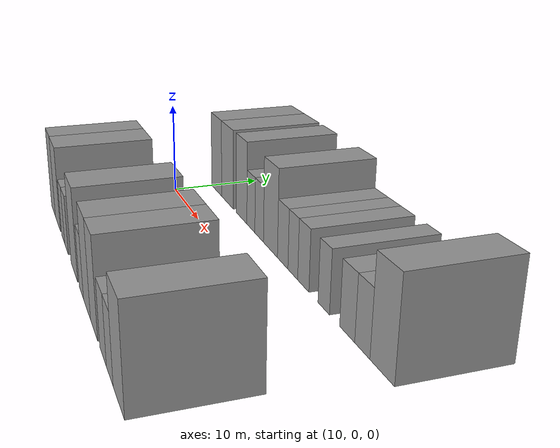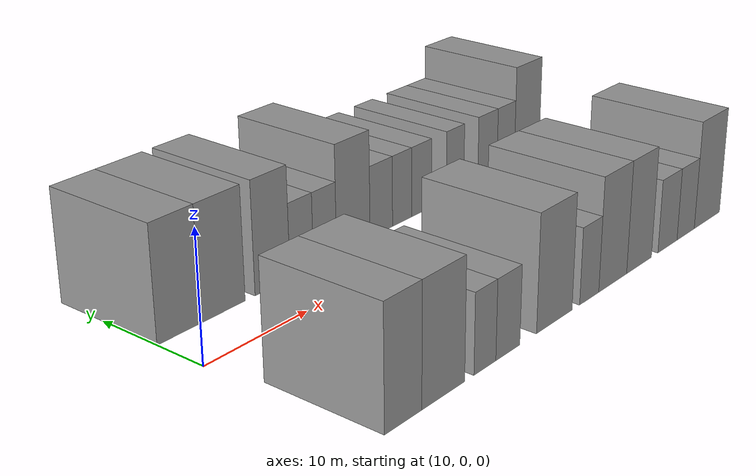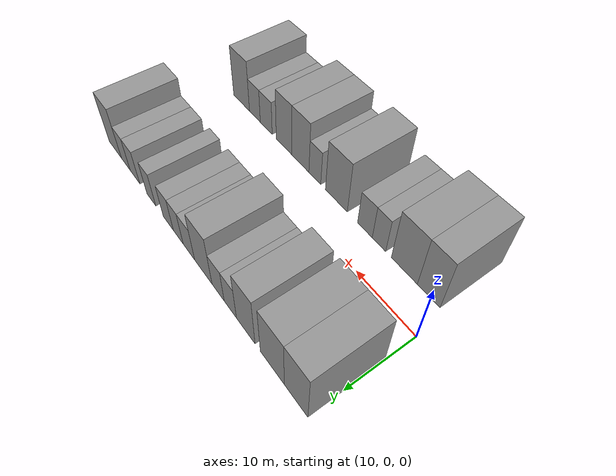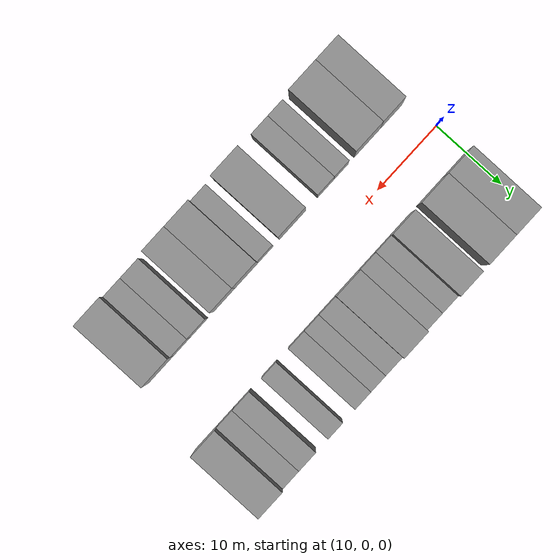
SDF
<sdf version="1.6">
 <world name="default">
  <model name="building_1">
   <static>1</static>
   <pose>12.0045 9.5000 0 0.000000 0.000000 1.570796</pose>
   <link name="link">
    <pose>0 0 4.50 0 0 0</pose>
    <collision name="collision"><geometry><box><size>10.0000 4.0090 9.0000</size></box></geometry></collision>
    <visual name="visual">
     <cast_shadows>0</cast_shadows>
     <geometry><box><size>10.0000 4.0090 9.0000</size></box></geometry>
     <material>
      <script>
       <uri>model://grey_wall/materials/scripts</uri>
       <uri>model://grey_wall/materials/textures</uri>
       <name>vrc/grey_wall</name>
      </script>
     </material>
    </visual>
   </link>
  </model>
  <model name="building_2">
   <static>1</static>
   <pose>16.1920 9.5000 0 0.000000 0.000000 1.570796</pose>
   <link name="link">
    <pose>0 0 4.50 0 0 0</pose>
    <collision name="collision"><geometry><box><size>10.0000 4.3661 9.0000</size></box></geometry></collision>
    <visual name="visual">
     <cast_shadows>0</cast_shadows>
     <geometry><box><size>10.0000 4.3661 9.0000</size></box></geometry>
     <material>
      <script>
       <uri>model://grey_wall/materials/scripts</uri>
       <uri>model://grey_wall/materials/textures</uri>
       <name>vrc/grey_wall</name>
      </script>
     </material>
    </visual>
   </link>
  </model>
  <model name="building_3">
   <static>1</static>
   <pose>21.2087 9.5000 0 0.000000 0.000000 1.570796</pose>
   <link name="link">
    <pose>0 0 4.50 0 0 0</pose>
    <collision name="collision"><geometry><box><size>10.0000 3.6673 9.0000</size></box></geometry></collision>
    <visual name="visual">
     <cast_shadows>0</cast_shadows>
     <geometry><box><size>10.0000 3.6673 9.0000</size></box></geometry>
     <material>
      <script>
       <uri>model://grey_wall/materials/scripts</uri>
       <uri>model://grey_wall/materials/textures</uri>
       <name>vrc/grey_wall</name>
      </script>
     </material>
    </visual>
   </link>
  </model>
  <model name="building_4">
   <static>1</static>
   <pose>24.3245 9.5000 0 0.000000 0.000000 1.570796</pose>
   <link name="link">
    <pose>0 0 3.00 0 0 0</pose>
    <collision name="collision"><geometry><box><size>10.0000 2.5643 6.0000</size></box></geometry></collision>
    <visual name="visual">
     <cast_shadows>0</cast_shadows>
     <geometry><box><size>10.0000 2.5643 6.0000</size></box></geometry>
     <material>
      <script>
       <uri>model://grey_wall/materials/scripts</uri>
       <uri>model://grey_wall/materials/textures</uri>
       <name>vrc/grey_wall</name>
      </script>
     </material>
    </visual>
   </link>
  </model>
  <model name="building_5">
   <static>1</static>
   <pose>26.9163 9.5000 0 0.000000 0.000000 1.570796</pose>
   <link name="link">
    <pose>0 0 3.00 0 0 0</pose>
    <collision name="collision"><geometry><box><size>10.0000 2.6194 6.0000</size></box></geometry></collision>
    <visual name="visual">
     <cast_shadows>0</cast_shadows>
     <geometry><box><size>10.0000 2.6194 6.0000</size></box></geometry>
     <material>
      <script>
       <uri>model://grey_wall/materials/scripts</uri>
       <uri>model://grey_wall/materials/textures</uri>
       <name>vrc/grey_wall</name>
      </script>
     </material>
    </visual>
   </link>
  </model>
  <model name="building_6">
   <static>1</static>
   <pose>30.2056 9.5000 0 0.000000 0.000000 1.570796</pose>
   <link name="link">
    <pose>0 0 4.50 0 0 0</pose>
    <collision name="collision"><geometry><box><size>10.0000 3.9591 9.0000</size></box></geometry></collision>
    <visual name="visual">
     <cast_shadows>0</cast_shadows>
     <geometry><box><size>10.0000 3.9591 9.0000</size></box></geometry>
     <material>
      <script>
       <uri>model://grey_wall/materials/scripts</uri>
       <uri>model://grey_wall/materials/textures</uri>
       <name>vrc/grey_wall</name>
      </script>
     </material>
    </visual>
   </link>
  </model>
  <model name="building_7">
   <static>1</static>
   <pose>33.5692 9.5000 0 0.000000 0.000000 1.570796</pose>
   <link name="link">
    <pose>0 0 3.00 0 0 0</pose>
    <collision name="collision"><geometry><box><size>10.0000 2.7680 6.0000</size></box></geometry></collision>
    <visual name="visual">
     <cast_shadows>0</cast_shadows>
     <geometry><box><size>10.0000 2.7680 6.0000</size></box></geometry>
     <material>
      <script>
       <uri>model://grey_wall/materials/scripts</uri>
       <uri>model://grey_wall/materials/textures</uri>
       <name>vrc/grey_wall</name>
      </script>
     </material>
    </visual>
   </link>
  </model>
  <model name="building_8">
   <static>1</static>
   <pose>36.1631 9.5000 0 0.000000 0.000000 1.570796</pose>
   <link name="link">
    <pose>0 0 3.00 0 0 0</pose>
    <collision name="collision"><geometry><box><size>10.0000 2.4198 6.0000</size></box></geometry></collision>
    <visual name="visual">
     <cast_shadows>0</cast_shadows>
     <geometry><box><size>10.0000 2.4198 6.0000</size></box></geometry>
     <material>
      <script>
       <uri>model://grey_wall/materials/scripts</uri>
       <uri>model://grey_wall/materials/textures</uri>
       <name>vrc/grey_wall</name>
      </script>
     </material>
    </visual>
   </link>
  </model>
  <model name="building_9">
   <static>1</static>
   <pose>38.6890 9.5000 0 0.000000 0.000000 1.570796</pose>
   <link name="link">
    <pose>0 0 3.00 0 0 0</pose>
    <collision name="collision"><geometry><box><size>10.0000 2.6320 6.0000</size></box></geometry></collision>
    <visual name="visual">
     <cast_shadows>0</cast_shadows>
     <geometry><box><size>10.0000 2.6320 6.0000</size></box></geometry>
     <material>
      <script>
       <uri>model://grey_wall/materials/scripts</uri>
       <uri>model://grey_wall/materials/textures</uri>
       <name>vrc/grey_wall</name>
      </script>
     </material>
    </visual>
   </link>
  </model>
  <model name="building_10">
   <static>1</static>
   <pose>43.2170 9.5000 0 0.000000 0.000000 1.570796</pose>
   <link name="link">
    <pose>0 0 3.00 0 0 0</pose>
    <collision name="collision"><geometry><box><size>10.0000 2.4241 6.0000</size></box></geometry></collision>
    <visual name="visual">
     <cast_shadows>0</cast_shadows>
     <geometry><box><size>10.0000 2.4241 6.0000</size></box></geometry>
     <material>
      <script>
       <uri>model://grey_wall/materials/scripts</uri>
       <uri>model://grey_wall/materials/textures</uri>
       <name>vrc/grey_wall</name>
      </script>
     </material>
    </visual>
   </link>
  </model>
  <model name="building_11">
   <static>1</static>
   <pose>47.8303 9.5000 0 0.000000 0.000000 1.570796</pose>
   <link name="link">
    <pose>0 0 3.00 0 0 0</pose>
    <collision name="collision"><geometry><box><size>10.0000 2.8025 6.0000</size></box></geometry></collision>
    <visual name="visual">
     <cast_shadows>0</cast_shadows>
     <geometry><box><size>10.0000 2.8025 6.0000</size></box></geometry>
     <material>
      <script>
       <uri>model://grey_wall/materials/scripts</uri>
       <uri>model://grey_wall/materials/textures</uri>
       <name>vrc/grey_wall</name>
      </script>
     </material>
    </visual>
   </link>
  </model>
  <model name="building_12">
   <static>1</static>
   <pose>50.5448 9.5000 0 0.000000 0.000000 1.570796</pose>
   <link name="link">
    <pose>0 0 3.00 0 0 0</pose>
    <collision name="collision"><geometry><box><size>10.0000 2.6265 6.0000</size></box></geometry></collision>
    <visual name="visual">
     <cast_shadows>0</cast_shadows>
     <geometry><box><size>10.0000 2.6265 6.0000</size></box></geometry>
     <material>
      <script>
       <uri>model://grey_wall/materials/scripts</uri>
       <uri>model://grey_wall/materials/textures</uri>
       <name>vrc/grey_wall</name>
      </script>
     </material>
    </visual>
   </link>
  </model>
  <model name="building_13">
   <static>1</static>
   <pose>53.8044 9.5000 0 0.000000 0.000000 1.570796</pose>
   <link name="link">
    <pose>0 0 4.50 0 0 0</pose>
    <collision name="collision"><geometry><box><size>10.0000 3.8926 9.0000</size></box></geometry></collision>
    <visual name="visual">
     <cast_shadows>0</cast_shadows>
     <geometry><box><size>10.0000 3.8926 9.0000</size></box></geometry>
     <material>
      <script>
       <uri>model://grey_wall/materials/scripts</uri>
       <uri>model://grey_wall/materials/textures</uri>
       <name>vrc/grey_wall</name>
      </script>
     </material>
    </visual>
   </link>
  </model>
  <model name="building_50">
   <static>1</static>
   <pose>12.8146 -9.5000 0 0.000000 0.000000 1.570796</pose>
   <link name="link">
    <pose>0 0 4.50 0 0 0</pose>
    <collision name="collision"><geometry><box><size>10.0000 3.6291 9.0000</size></box></geometry></collision>
    <visual name="visual">
     <cast_shadows>0</cast_shadows>
     <geometry><box><size>10.0000 3.6291 9.0000</size></box></geometry>
     <material>
      <script>
       <uri>model://grey_wall/materials/scripts</uri>
       <uri>model://grey_wall/materials/textures</uri>
       <name>vrc/grey_wall</name>
      </script>
     </material>
    </visual>
   </link>
  </model>
  <model name="building_51">
   <static>1</static>
   <pose>16.8435 -9.5000 0 0.000000 0.000000 1.570796</pose>
   <link name="link">
    <pose>0 0 4.50 0 0 0</pose>
    <collision name="collision"><geometry><box><size>10.0000 4.4288 9.0000</size></box></geometry></collision>
    <visual name="visual">
     <cast_shadows>0</cast_shadows>
     <geometry><box><size>10.0000 4.4288 9.0000</size></box></geometry>
     <material>
      <script>
       <uri>model://grey_wall/materials/scripts</uri>
       <uri>model://grey_wall/materials/textures</uri>
       <name>vrc/grey_wall</name>
      </script>
     </material>
    </visual>
   </link>
  </model>
  <model name="building_52">
   <static>1</static>
   <pose>21.2728 -9.5000 0 0.000000 0.000000 1.570796</pose>
   <link name="link">
    <pose>0 0 3.00 0 0 0</pose>
    <collision name="collision"><geometry><box><size>10.0000 2.4298 6.0000</size></box></geometry></collision>
    <visual name="visual">
     <cast_shadows>0</cast_shadows>
     <geometry><box><size>10.0000 2.4298 6.0000</size></box></geometry>
     <material>
      <script>
       <uri>model://grey_wall/materials/scripts</uri>
       <uri>model://grey_wall/materials/textures</uri>
       <name>vrc/grey_wall</name>
      </script>
     </material>
    </visual>
   </link>
  </model>
  <model name="building_53">
   <static>1</static>
   <pose>23.8699 -9.5000 0 0.000000 0.000000 1.570796</pose>
   <link name="link">
    <pose>0 0 3.00 0 0 0</pose>
    <collision name="collision"><geometry><box><size>10.0000 2.7645 6.0000</size></box></geometry></collision>
    <visual name="visual">
     <cast_shadows>0</cast_shadows>
     <geometry><box><size>10.0000 2.7645 6.0000</size></box></geometry>
     <material>
      <script>
       <uri>model://grey_wall/materials/scripts</uri>
       <uri>model://grey_wall/materials/textures</uri>
       <name>vrc/grey_wall</name>
      </script>
     </material>
    </visual>
   </link>
  </model>
  <model name="building_54">
   <static>1</static>
   <pose>29.4754 -9.5000 0 0.000000 0.000000 1.570796</pose>
   <link name="link">
    <pose>0 0 4.50 0 0 0</pose>
    <collision name="collision"><geometry><box><size>10.0000 4.4463 9.0000</size></box></geometry></collision>
    <visual name="visual">
     <cast_shadows>0</cast_shadows>
     <geometry><box><size>10.0000 4.4463 9.0000</size></box></geometry>
     <material>
      <script>
       <uri>model://grey_wall/materials/scripts</uri>
       <uri>model://grey_wall/materials/textures</uri>
       <name>vrc/grey_wall</name>
      </script>
     </material>
    </visual>
   </link>
  </model>
  <model name="building_55">
   <static>1</static>
   <pose>33.9761 -9.5000 0 0.000000 0.000000 1.570796</pose>
   <link name="link">
    <pose>0 0 3.00 0 0 0</pose>
    <collision name="collision"><geometry><box><size>10.0000 2.5552 6.0000</size></box></geometry></collision>
    <visual name="visual">
     <cast_shadows>0</cast_shadows>
     <geometry><box><size>10.0000 2.5552 6.0000</size></box></geometry>
     <material>
      <script>
       <uri>model://grey_wall/materials/scripts</uri>
       <uri>model://grey_wall/materials/textures</uri>
       <name>vrc/grey_wall</name>
      </script>
     </material>
    </visual>
   </link>
  </model>
  <model name="building_56">
   <static>1</static>
   <pose>37.2035 -9.5000 0 0.000000 0.000000 1.570796</pose>
   <link name="link">
    <pose>0 0 4.50 0 0 0</pose>
    <collision name="collision"><geometry><box><size>10.0000 3.8996 9.0000</size></box></geometry></collision>
    <visual name="visual">
     <cast_shadows>0</cast_shadows>
     <geometry><box><size>10.0000 3.8996 9.0000</size></box></geometry>
     <material>
      <script>
       <uri>model://grey_wall/materials/scripts</uri>
       <uri>model://grey_wall/materials/textures</uri>
       <name>vrc/grey_wall</name>
      </script>
     </material>
    </visual>
   </link>
  </model>
  <model name="building_57">
   <static>1</static>
   <pose>40.9713 -9.5000 0 0.000000 0.000000 1.570796</pose>
   <link name="link">
    <pose>0 0 4.50 0 0 0</pose>
    <collision name="collision"><geometry><box><size>10.0000 3.6360 9.0000</size></box></geometry></collision>
    <visual name="visual">
     <cast_shadows>0</cast_shadows>
     <geometry><box><size>10.0000 3.6360 9.0000</size></box></geometry>
     <material>
      <script>
       <uri>model://grey_wall/materials/scripts</uri>
       <uri>model://grey_wall/materials/textures</uri>
       <name>vrc/grey_wall</name>
      </script>
     </material>
    </visual>
   </link>
  </model>
  <model name="building_58">
   <static>1</static>
   <pose>45.2743 -9.5000 0 0.000000 0.000000 1.570796</pose>
   <link name="link">
    <pose>0 0 3.00 0 0 0</pose>
    <collision name="collision"><geometry><box><size>10.0000 2.9699 6.0000</size></box></geometry></collision>
    <visual name="visual">
     <cast_shadows>0</cast_shadows>
     <geometry><box><size>10.0000 2.9699 6.0000</size></box></geometry>
     <material>
      <script>
       <uri>model://grey_wall/materials/scripts</uri>
       <uri>model://grey_wall/materials/textures</uri>
       <name>vrc/grey_wall</name>
      </script>
     </material>
    </visual>
   </link>
  </model>
  <model name="building_59">
   <static>1</static>
   <pose>48.1561 -9.5000 0 0.000000 0.000000 1.570796</pose>
   <link name="link">
    <pose>0 0 3.00 0 0 0</pose>
    <collision name="collision"><geometry><box><size>10.0000 2.7938 6.0000</size></box></geometry></collision>
    <visual name="visual">
     <cast_shadows>0</cast_shadows>
     <geometry><box><size>10.0000 2.7938 6.0000</size></box></geometry>
     <material>
      <script>
       <uri>model://grey_wall/materials/scripts</uri>
       <uri>model://grey_wall/materials/textures</uri>
       <name>vrc/grey_wall</name>
      </script>
     </material>
    </visual>
   </link>
  </model>
  <model name="building_60">
   <static>1</static>
   <pose>51.6716 -9.5000 0 0.000000 0.000000 1.570796</pose>
   <link name="link">
    <pose>0 0 4.50 0 0 0</pose>
    <collision name="collision"><geometry><box><size>10.0000 4.2370 9.0000</size></box></geometry></collision>
    <visual name="visual">
     <cast_shadows>0</cast_shadows>
     <geometry><box><size>10.0000 4.2370 9.0000</size></box></geometry>
     <material>
      <script>
       <uri>model://grey_wall/materials/scripts</uri>
       <uri>model://grey_wall/materials/textures</uri>
       <name>vrc/grey_wall</name>
      </script>
     </material>
    </visual>
   </link>
  </model>
 </world>
</sdf>
